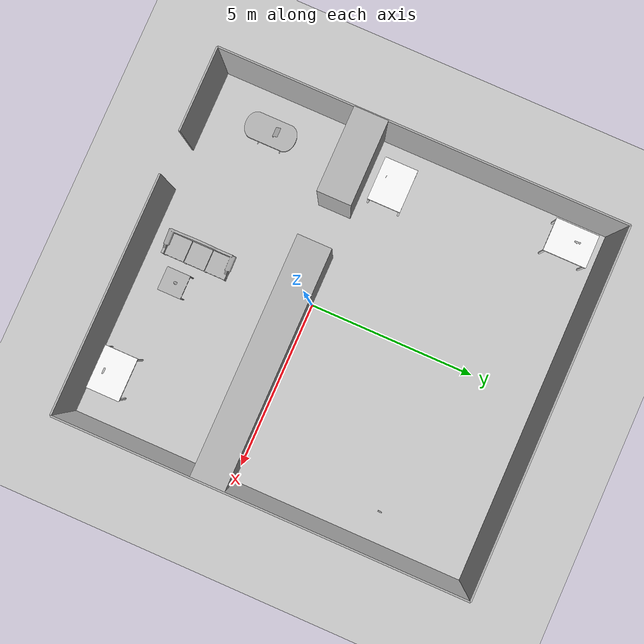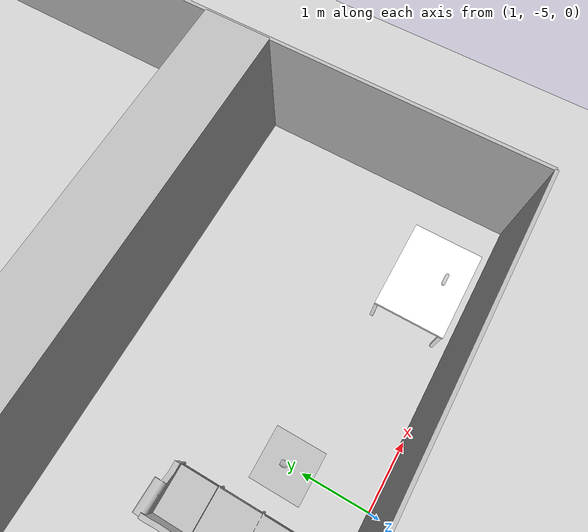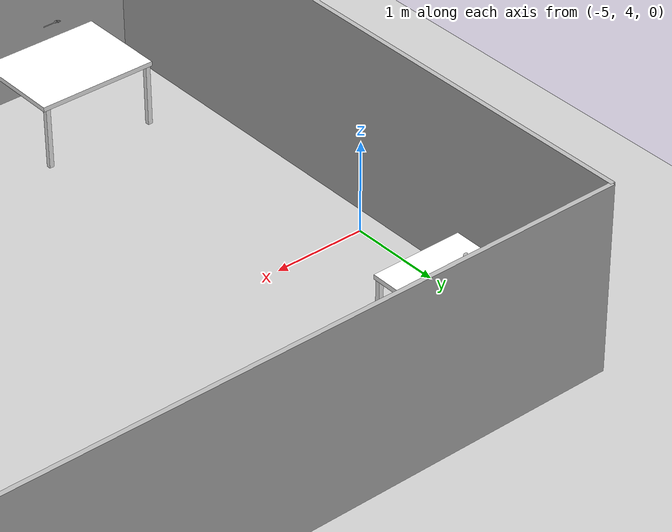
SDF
<sdf version="1.5">
 <world name="hri_hk_studio_world">
  <include><uri>model://sun</uri></include>
  <include><uri>model://ground_plane</uri></include>
  <include><uri>model://hri_hk_studio</uri><pose>2 -5 0 0 0 0</pose></include>
  <include><uri>model://hri_dinnertable</uri><pose>-4 -3 0 0 0 0</pose></include>
  <include><uri>model://hri_desk</uri><pose>-4 0.75 0 0 0 0</pose></include>
  <include><uri>model://hri_desk</uri><pose>-4.5 6 0 0 0 1.57</pose></include>
  <include><uri>model://hri_desk</uri><pose>4 -4.3 0 0 0 0</pose></include>
  <include><uri>model://hri_couch</uri><pose>0 -3.5 0 0 0 0</pose></include>
  <include><uri>model://hri_coffeetable</uri><pose>1 -3.8 0 0 0 0</pose></include>
  <include><uri>model://hri_obj_laptop</uri><pose>-4 -2.9 0.9 0 0 0</pose></include>
  <include><uri>model://hri_obj_mug</uri><pose>1 -3.8 0.5 0 0 0</pose></include>
  <include><uri>model://hri_obj_glassescase</uri><pose>4 -4.5 0.9 0 0 0</pose></include>
  <include><uri>model://hri_obj_fork</uri><pose>-4 0.5 0.9 0 0 0</pose></include>
  <include><uri>model://hri_obj_statue</uri><pose>-4.5 6 0.9 0 0 0</pose></include>
  <include><uri>model://hri_obj_monitor</uri><pose>4.5 4 0.6 0 0 0</pose></include>
 </world>
</sdf>

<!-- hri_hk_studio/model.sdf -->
<sdf version="1.4">
<model name="hri_hk_studio">
  <pose>0 0 0 0 0 0</pose>
  <static>true</static>

    <link name="wall1">
      <pose>0 0 1 0 0 0</pose>
      <inertial>
        <mass>1000.0</mass>
        <inertia> <!-- interias are tricky to compute -->
          <!-- http://answers.gazebosim.org/question/4372/the-inertia-matrix-explained/ -->
          <ixx>0.083</ixx>       <!-- for a box: ixx = 0.083 * mass * (y*y + z*z) -->
          <ixy>0.0</ixy>         <!-- for a box: ixy = 0 -->
          <ixz>0.0</ixz>         <!-- for a box: ixz = 0 -->
          <iyy>0.083</iyy>       <!-- for a box: iyy = 0.083 * mass * (x*x + z*z) -->
          <iyz>0.0</iyz>         <!-- for a box: iyz = 0 -->
          <izz>0.083</izz>       <!-- for a box: izz = 0.083 * mass * (x*x + y*y) -->
        </inertia>
      </inertial>
      <collision name="collision">
        <geometry>
          <box>
            <size>7.0    0.0500    2.0000</size>
          </box>
        </geometry>
      </collision>
      <visual name="visual">
        <geometry>
          <box>
            <size>7.0    0.0500    2.0000</size>
          </box>
        </geometry>
      </visual>
    </link>

    <link name="wall2">
      <pose>-6 0 1 0 0 0</pose>
      <inertial>
        <mass>1000.0</mass>
        <inertia> <!-- interias are tricky to compute -->
          <!-- http://answers.gazebosim.org/question/4372/the-inertia-matrix-explained/ -->
          <ixx>0.083</ixx>       <!-- for a box: ixx = 0.083 * mass * (y*y + z*z) -->
          <ixy>0.0</ixy>         <!-- for a box: ixy = 0 -->
          <ixz>0.0</ixz>         <!-- for a box: ixz = 0 -->
          <iyy>0.083</iyy>       <!-- for a box: iyy = 0.083 * mass * (x*x + z*z) -->
          <iyz>0.0</iyz>         <!-- for a box: iyz = 0 -->
          <izz>0.083</izz>       <!-- for a box: izz = 0.083 * mass * (x*x + y*y) -->
        </inertia>
      </inertial>
      <collision name="collision">
        <geometry>
          <box>
            <size>2.5    0.0500    2.0000</size>
          </box>
        </geometry>
      </collision>
      <visual name="visual">
        <geometry>
          <box>
            <size>2.5    0.0500    2.0000</size>
          </box>
        </geometry>
      </visual>
    </link>

    <link name="wall3">
      <pose>-7.25 6 1 0 0 0</pose>
      <inertial>
        <mass>1000.0</mass>
        <inertia> <!-- interias are tricky to compute -->
          <!-- http://answers.gazebosim.org/question/4372/the-inertia-matrix-explained/ -->
          <ixx>0.083</ixx>       <!-- for a box: ixx = 0.083 * mass * (y*y + z*z) -->
          <ixy>0.0</ixy>         <!-- for a box: ixy = 0 -->
          <ixz>0.0</ixz>         <!-- for a box: ixz = 0 -->
          <iyy>0.083</iyy>       <!-- for a box: iyy = 0.083 * mass * (x*x + z*z) -->
          <iyz>0.0</iyz>         <!-- for a box: iyz = 0 -->
          <izz>0.083</izz>       <!-- for a box: izz = 0.083 * mass * (x*x + y*y) -->
        </inertia>
      </inertial>
      <collision name="collision">
        <geometry>
          <box>
            <size>0.0500    12    2.0000</size>
          </box>
        </geometry>
      </collision>
      <visual name="visual">
        <geometry>
          <box>
            <size>0.0500    12    2.0000</size>
          </box>
        </geometry>
      </visual>
    </link>

    <link name="wall4">
      <pose>-6 4.5 1 0 0 0</pose>
      <inertial>
        <mass>1000.0</mass>
        <inertia> <!-- interias are tricky to compute -->
          <!-- http://answers.gazebosim.org/question/4372/the-inertia-matrix-explained/ -->
          <ixx>0.083</ixx>       <!-- for a box: ixx = 0.083 * mass * (y*y + z*z) -->
          <ixy>0.0</ixy>         <!-- for a box: ixy = 0 -->
          <ixz>0.0</ixz>         <!-- for a box: ixz = 0 -->
          <iyy>0.083</iyy>       <!-- for a box: iyy = 0.083 * mass * (x*x + z*z) -->
          <iyz>0.0</iyz>         <!-- for a box: iyz = 0 -->
          <izz>0.083</izz>       <!-- for a box: izz = 0.083 * mass * (x*x + y*y) -->
        </inertia>
      </inertial>
      <collision name="collision">
        <geometry>
          <box>
            <size>2.5    1    2.0000</size>
          </box>
        </geometry>
      </collision>
      <visual name="visual">
        <geometry>
          <box>
            <size>2.5    1    2.0000</size>
          </box>
        </geometry>
      </visual>
    </link>

    <link name="wall5">
      <pose>-1.875 12 1 0 0 0</pose>
      <inertial>
        <mass>1000.0</mass>
        <inertia> <!-- interias are tricky to compute -->
          <!-- http://answers.gazebosim.org/question/4372/the-inertia-matrix-explained/ -->
          <ixx>0.083</ixx>       <!-- for a box: ixx = 0.083 * mass * (y*y + z*z) -->
          <ixy>0.0</ixy>         <!-- for a box: ixy = 0 -->
          <ixz>0.0</ixz>         <!-- for a box: ixz = 0 -->
          <iyy>0.083</iyy>       <!-- for a box: iyy = 0.083 * mass * (x*x + z*z) -->
          <iyz>0.0</iyz>         <!-- for a box: iyz = 0 -->
          <izz>0.083</izz>       <!-- for a box: izz = 0.083 * mass * (x*x + y*y) -->
        </inertia>
      </inertial>
      <collision name="collision">
        <geometry>
          <box>
            <size>10.75    0.0500    2.0000</size>
          </box>
        </geometry>
      </collision>
      <visual name="visual">
        <geometry>
          <box>
            <size>10.75    0.0500    2.0000</size>
          </box>
        </geometry>
      </visual>
    </link>

    <link name="wall6">
      <pose>3.5 6 1 0 0 0</pose>
      <inertial>
        <mass>1000.0</mass>
        <inertia> <!-- interias are tricky to compute -->
          <!-- http://answers.gazebosim.org/question/4372/the-inertia-matrix-explained/ -->
          <ixx>0.083</ixx>       <!-- for a box: ixx = 0.083 * mass * (y*y + z*z) -->
          <ixy>0.0</ixy>         <!-- for a box: ixy = 0 -->
          <ixz>0.0</ixz>         <!-- for a box: ixz = 0 -->
          <iyy>0.083</iyy>       <!-- for a box: iyy = 0.083 * mass * (x*x + z*z) -->
          <iyz>0.0</iyz>         <!-- for a box: iyz = 0 -->
          <izz>0.083</izz>       <!-- for a box: izz = 0.083 * mass * (x*x + y*y) -->
        </inertia>
      </inertial>
      <collision name="collision">
        <geometry>
          <box>
            <size>0.0500    12    2.0000</size>
          </box>
        </geometry>
      </collision>
      <visual name="visual">
        <geometry>
          <box>
            <size>0.0500    12    2.0000</size>
          </box>
        </geometry>
      </visual>
    </link>

    <link name="wall7">
      <pose>0 4.5 1 0 0 0</pose>
      <inertial>
        <mass>1000.0</mass>
        <inertia> <!-- interias are tricky to compute -->
          <!-- http://answers.gazebosim.org/question/4372/the-inertia-matrix-explained/ -->
          <ixx>0.083</ixx>       <!-- for a box: ixx = 0.083 * mass * (y*y + z*z) -->
          <ixy>0.0</ixy>         <!-- for a box: ixy = 0 -->
          <ixz>0.0</ixz>         <!-- for a box: ixz = 0 -->
          <iyy>0.083</iyy>       <!-- for a box: iyy = 0.083 * mass * (x*x + z*z) -->
          <iyz>0.0</iyz>         <!-- for a box: iyz = 0 -->
          <izz>0.083</izz>       <!-- for a box: izz = 0.083 * mass * (x*x + y*y) -->
        </inertia>
      </inertial>
      <collision name="collision">
        <geometry>
          <box>
            <size>7    1    2.0000</size>
          </box>
        </geometry>
      </collision>
      <visual name="visual">
        <geometry>
          <box>
            <size>7    1    2.0000</size>
          </box>
        </geometry>
      </visual>
    </link>

  </model>
</sdf>

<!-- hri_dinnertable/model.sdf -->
<sdf version="1.4">
<model name="dinner table">
  <pose>0 0 0 0 0 0</pose>
  <static>true</static>
    <link name="link">
      <pose>0 0 0 0 0 0</pose>
      <inertial>
        <mass>1.0</mass>
        <inertia> <!-- interias are tricky to compute -->
          <!-- http://answers.gazebosim.org/question/4372/the-inertia-matrix-explained/ -->
          <ixx>0.083</ixx>       <!-- for a box: ixx = 0.083 * mass * (y*y + z*z) -->
          <ixy>0.0</ixy>         <!-- for a box: ixy = 0 -->
          <ixz>0.0</ixz>         <!-- for a box: ixz = 0 -->
          <iyy>0.083</iyy>       <!-- for a box: iyy = 0.083 * mass * (x*x + z*z) -->
          <iyz>0.0</iyz>         <!-- for a box: iyz = 0 -->
          <izz>0.083</izz>       <!-- for a box: izz = 0.083 * mass * (x*x + y*y) -->
        </inertia>
      </inertial>
      <collision name="collision">
	<pose>0 0 0 1.5708 0 0</pose>
        <geometry>
	  <mesh>
	    <uri>model://hri_dinnertable/meshes/dinnertable.dae</uri>
	    <scale>1 1 1</scale>
	  </mesh>
        </geometry>
      </collision>
      <visual name="visual">
	<pose>0 0 0 1.5708 0 0</pose>
        <geometry>
	  <mesh>
	    <uri>model://hri_dinnertable/meshes/dinnertable.dae</uri>
	    <scale>1 1 1</scale>
	  </mesh>
        </geometry>
      </visual>
    </link>
  </model>
</sdf>

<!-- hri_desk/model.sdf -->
<sdf version="1.4">
<model name="hri_desk">
  <pose>0 0 0 0 0 0</pose>
  <static>true</static>

    <link name="wall1">
      <pose>0 0 0.685 0 0 0</pose>
      <inertial>
        <mass>1000.0</mass>
        <inertia> <!-- interias are tricky to compute -->
          <!-- http://answers.gazebosim.org/question/4372/the-inertia-matrix-explained/ -->
          <ixx>0.083</ixx>       <!-- for a box: ixx = 0.083 * mass * (y*y + z*z) -->
          <ixy>0.0</ixy>         <!-- for a box: ixy = 0 -->
          <ixz>0.0</ixz>         <!-- for a box: ixz = 0 -->
          <iyy>0.083</iyy>       <!-- for a box: iyy = 0.083 * mass * (x*x + z*z) -->
          <iyz>0.0</iyz>         <!-- for a box: iyz = 0 -->
          <izz>0.083</izz>       <!-- for a box: izz = 0.083 * mass * (x*x + y*y) -->
        </inertia>
      </inertial>
      <collision name="collision">
        <geometry>
          <box>
            <size>1.3    1.0    0.05</size>
          </box>
        </geometry>
      </collision>
      <visual name="visual">
        <geometry>
          <box>
            <size>1.3    1.0    0.05</size>
          </box>
        </geometry>
	<material>
          <ambient>0.5 0.5 0.3 1</ambient>
          <diffuse>1 1 1 1</diffuse>
          <specular>0.1 0.1 0.1 1</specular>
          <emissive>0 0 0 0</emissive>
        </material>
      </visual>
    </link>

    <link name="wall2">
      <pose>0.6    0.475    0.33 0 0 0</pose>
      <inertial>
        <mass>1000.0</mass>
        <inertia> <!-- interias are tricky to compute -->
          <!-- http://answers.gazebosim.org/question/4372/the-inertia-matrix-explained/ -->
          <ixx>0.083</ixx>       <!-- for a box: ixx = 0.083 * mass * (y*y + z*z) -->
          <ixy>0.0</ixy>         <!-- for a box: ixy = 0 -->
          <ixz>0.0</ixz>         <!-- for a box: ixz = 0 -->
          <iyy>0.083</iyy>       <!-- for a box: iyy = 0.083 * mass * (x*x + z*z) -->
          <iyz>0.0</iyz>         <!-- for a box: iyz = 0 -->
          <izz>0.083</izz>       <!-- for a box: izz = 0.083 * mass * (x*x + y*y) -->
        </inertia>
      </inertial>
      <collision name="collision">
        <geometry>
          <box>
            <size>0.0500    0.0500    0.66</size>
          </box>
        </geometry>
      </collision>
      <visual name="visual">
        <geometry>
          <box>
            <size>0.0500    0.0500    0.66</size>
          </box>
        </geometry>
	<material>
          <ambient>1 1 0.5 1</ambient>
          <diffuse>1 1 1 1</diffuse>
          <specular>0.1 0.1 0.1 1</specular>
          <emissive>0 0 0 0</emissive>
        </material>
      </visual>
    </link>

    <link name="wall3">
      <pose>0.6    -0.475    0.33 0 0 0</pose>
      <inertial>
        <mass>1000.0</mass>
        <inertia> <!-- interias are tricky to compute -->
          <!-- http://answers.gazebosim.org/question/4372/the-inertia-matrix-explained/ -->
          <ixx>0.083</ixx>       <!-- for a box: ixx = 0.083 * mass * (y*y + z*z) -->
          <ixy>0.0</ixy>         <!-- for a box: ixy = 0 -->
          <ixz>0.0</ixz>         <!-- for a box: ixz = 0 -->
          <iyy>0.083</iyy>       <!-- for a box: iyy = 0.083 * mass * (x*x + z*z) -->
          <iyz>0.0</iyz>         <!-- for a box: iyz = 0 -->
          <izz>0.083</izz>       <!-- for a box: izz = 0.083 * mass * (x*x + y*y) -->
        </inertia>
      </inertial>
      <collision name="collision">
        <geometry>
          <box>
            <size>0.0500    0.0500    0.66</size>
          </box>
        </geometry>
      </collision>
      <visual name="visual">
        <geometry>
          <box>
            <size>0.0500    0.0500    0.66</size>
          </box>
        </geometry>
	<material>
          <ambient>1 1 0.5 1</ambient>
          <diffuse>1 1 1 1</diffuse>
          <specular>0.1 0.1 0.1 1</specular>
          <emissive>0 0 0 0</emissive>
        </material>
      </visual>
    </link>

    <link name="wall4">
      <pose>-0.6    -0.475    0.33 0 0 0</pose>
      <inertial>
        <mass>1000.0</mass>
        <inertia> <!-- interias are tricky to compute -->
          <!-- http://answers.gazebosim.org/question/4372/the-inertia-matrix-explained/ -->
          <ixx>0.083</ixx>       <!-- for a box: ixx = 0.083 * mass * (y*y + z*z) -->
          <ixy>0.0</ixy>         <!-- for a box: ixy = 0 -->
          <ixz>0.0</ixz>         <!-- for a box: ixz = 0 -->
          <iyy>0.083</iyy>       <!-- for a box: iyy = 0.083 * mass * (x*x + z*z) -->
          <iyz>0.0</iyz>         <!-- for a box: iyz = 0 -->
          <izz>0.083</izz>       <!-- for a box: izz = 0.083 * mass * (x*x + y*y) -->
        </inertia>
      </inertial>
      <collision name="collision">
        <geometry>
          <box>
            <size>0.0500    0.0500    0.66</size>
          </box>
        </geometry>
      </collision>
      <visual name="visual">
        <geometry>
          <box>
            <size>0.0500    0.0500    0.66</size>
          </box>
        </geometry>
	<material>
          <ambient>1 1 0.5 1</ambient>
          <diffuse>1 1 1 1</diffuse>
          <specular>0.1 0.1 0.1 1</specular>
          <emissive>0 0 0 0</emissive>
        </material>
      </visual>
    </link>

    <link name="wall5">
      <pose>-0.6    0.475    0.33 0 0 0</pose>
      <inertial>
        <mass>1000.0</mass>
        <inertia> <!-- interias are tricky to compute -->
          <!-- http://answers.gazebosim.org/question/4372/the-inertia-matrix-explained/ -->
          <ixx>0.083</ixx>       <!-- for a box: ixx = 0.083 * mass * (y*y + z*z) -->
          <ixy>0.0</ixy>         <!-- for a box: ixy = 0 -->
          <ixz>0.0</ixz>         <!-- for a box: ixz = 0 -->
          <iyy>0.083</iyy>       <!-- for a box: iyy = 0.083 * mass * (x*x + z*z) -->
          <iyz>0.0</iyz>         <!-- for a box: iyz = 0 -->
          <izz>0.083</izz>       <!-- for a box: izz = 0.083 * mass * (x*x + y*y) -->
        </inertia>
      </inertial>
      <collision name="collision">
        <geometry>
          <box>
            <size>0.0500    0.0500    0.66</size>
          </box>
        </geometry>
      </collision>
      <visual name="visual">
        <geometry>
          <box>
            <size>0.0500    0.0500    0.66</size>
          </box>
        </geometry>
	<material>
          <ambient>1 1 0.5 1</ambient>
          <diffuse>1 1 1 1</diffuse>
          <specular>0.1 0.1 0.1 1</specular>
          <emissive>0 0 0 0</emissive>
        </material>
      </visual>
    </link>

  </model>
</sdf>

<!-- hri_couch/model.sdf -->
<sdf version="1.4">
<model name="couch">
  <pose>0 0 0 0 0 0</pose>
  <static>true</static>
    <link name="link">
      <pose>0 0 0 0 0 0</pose>
      <inertial>
        <mass>1.0</mass>
        <inertia> <!-- interias are tricky to compute -->
          <!-- http://answers.gazebosim.org/question/4372/the-inertia-matrix-explained/ -->
          <ixx>0.083</ixx>       <!-- for a box: ixx = 0.083 * mass * (y*y + z*z) -->
          <ixy>0.0</ixy>         <!-- for a box: ixy = 0 -->
          <ixz>0.0</ixz>         <!-- for a box: ixz = 0 -->
          <iyy>0.083</iyy>       <!-- for a box: iyy = 0.083 * mass * (x*x + z*z) -->
          <iyz>0.0</iyz>         <!-- for a box: iyz = 0 -->
          <izz>0.083</izz>       <!-- for a box: izz = 0.083 * mass * (x*x + y*y) -->
        </inertia>
      </inertial>
      <collision name="collision">
	<pose>0 0 0 1.5708 0 0</pose>
        <geometry>
	  <mesh>
	    <uri>model://hri_couch/meshes/couch.dae</uri>
	    <scale>1 1 1</scale>
	  </mesh>
        </geometry>
      </collision>
      <visual name="visual">
	<pose>0 0 0 1.5708 0 0</pose>
        <geometry>
	  <mesh>
	    <uri>model://hri_couch/meshes/couch.dae</uri>
	    <scale>1 1 1</scale>
	  </mesh>
        </geometry>
      </visual>
    </link>
  </model>
</sdf>

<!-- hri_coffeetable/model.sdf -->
<sdf version="1.4">
<model name="coffee table">
  <pose>0 0 0 0 0 0</pose>
  <static>true</static>
    <link name="link">
      <pose>0 0 0 0 0 0</pose>
      <inertial>
        <mass>1.0</mass>
        <inertia> <!-- interias are tricky to compute -->
          <!-- http://answers.gazebosim.org/question/4372/the-inertia-matrix-explained/ -->
          <ixx>0.083</ixx>       <!-- for a box: ixx = 0.083 * mass * (y*y + z*z) -->
          <ixy>0.0</ixy>         <!-- for a box: ixy = 0 -->
          <ixz>0.0</ixz>         <!-- for a box: ixz = 0 -->
          <iyy>0.083</iyy>       <!-- for a box: iyy = 0.083 * mass * (x*x + z*z) -->
          <iyz>0.0</iyz>         <!-- for a box: iyz = 0 -->
          <izz>0.083</izz>       <!-- for a box: izz = 0.083 * mass * (x*x + y*y) -->
        </inertia>
      </inertial>
      <collision name="collision">
	<pose>0 0 0 1.5708 0 0</pose>
        <geometry>
	  <mesh>
	    <uri>model://hri_coffeetable/meshes/coffeetable.dae</uri>
	    <scale>1 1 1</scale>
	  </mesh>
        </geometry>
      </collision>
      <visual name="visual">
	<pose>0 0 0 1.5708 0 0</pose>
        <geometry>
	  <mesh>
	    <uri>model://hri_coffeetable/meshes/coffeetable.dae</uri>
	    <scale>1 1 1</scale>
	  </mesh>
        </geometry>
      </visual>
    </link>
  </model>
</sdf>

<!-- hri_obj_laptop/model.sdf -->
<sdf version="1.5">
  <model name="hri_obj_laptop">
    <link name="link">
      <pose>0 0 0 0 0 0</pose>
      <inertial>
        <mass>0.0599</mass>
        <inertia>
          <ixx>0.0003028961527030333</ixx>
          <ixy>0</ixy>
          <ixz>0</ixz>
          <iyy>0.0003028961527030333</iyy>
          <iyz>0</iyz>
          <izz>3.2876352372798436e-05</izz>
        </inertia>
      </inertial>

      <collision name="collision">
        <geometry>
          <mesh>
            <uri>model://hri_obj_laptop/meshes/laptop.dae</uri>
          </mesh>
        </geometry>
        <surface>
          <contact>
            <!-- typical acrylic plastic material properties -->
            <poissons_ratio>0.35</poissons_ratio>
            <elastic_modulus>3.102640776e+09</elastic_modulus>
            <ode>
              <kp>100000</kp>
              <kd>100</kd>
              <max_vel>100.0</max_vel>
              <min_depth>0.001</min_depth>
            </ode>
          </contact>
          <friction>
            <torsional>
              <coefficient>1.0</coefficient>
              <use_patch_radius>0</use_patch_radius>
              <surface_radius>0.01</surface_radius>
            </torsional>
          </friction>
        </surface>
      </collision>

      <visual name="visual">
        <geometry>
          <mesh>
            <uri>model://hri_obj_laptop/meshes/laptop.dae</uri>
          </mesh>
        </geometry>
        <material>
          <script>
            <uri>file://media/materials/scripts/gazebo.material</uri>
            <name>Gazebo/GreyTransparent</name>
          </script>
        </material>
      </visual>

    </link>
  </model>
</sdf>

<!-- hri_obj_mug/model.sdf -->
<sdf version="1.5">
  <model name="hri_obj_mug">
    <link name="link">
      <pose>0 0 0.065 0 0 0</pose>
      <inertial>
        <mass>0.0599</mass>
        <inertia>
          <ixx>0.0003028961527030333</ixx>
          <ixy>0</ixy>
          <ixz>0</ixz>
          <iyy>0.0003028961527030333</iyy>
          <iyz>0</iyz>
          <izz>3.2876352372798436e-05</izz>
        </inertia>
      </inertial>

      <collision name="collision">
        <geometry>
          <mesh>
            <uri>model://hri_obj_mug/meshes/mug.dae</uri>
          </mesh>
        </geometry>
        <surface>
          <contact>
            <!-- typical acrylic plastic material properties -->
            <poissons_ratio>0.35</poissons_ratio>
            <elastic_modulus>3.102640776e+09</elastic_modulus>
            <ode>
              <kp>100000</kp>
              <kd>100</kd>
              <max_vel>100.0</max_vel>
              <min_depth>0.001</min_depth>
            </ode>
          </contact>
          <friction>
            <torsional>
              <coefficient>1.0</coefficient>
              <use_patch_radius>0</use_patch_radius>
              <surface_radius>0.01</surface_radius>
            </torsional>
          </friction>
        </surface>
      </collision>

      <visual name="visual">
        <geometry>
          <mesh>
            <uri>model://hri_obj_mug/meshes/mug.dae</uri>
          </mesh>
        </geometry>
        <material>
          <script>
            <uri>file://media/materials/scripts/gazebo.material</uri>
            <name>Gazebo/GreyTransparent</name>
          </script>
        </material>
      </visual>

    </link>
  </model>
</sdf>

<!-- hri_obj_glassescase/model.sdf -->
<sdf version="1.5">
  <model name="hri_obj_glassescase">
    <link name="link">
      <pose>0 0 0.065 0 0 0</pose>
      <inertial>
        <mass>0.0599</mass>
        <inertia>
          <ixx>0.0003028961527030333</ixx>
          <ixy>0</ixy>
          <ixz>0</ixz>
          <iyy>0.0003028961527030333</iyy>
          <iyz>0</iyz>
          <izz>3.2876352372798436e-05</izz>
        </inertia>
      </inertial>

      <collision name="collision">
        <geometry>
          <mesh>
            <uri>model://hri_obj_glassescase/meshes/glassescase.dae</uri>
          </mesh>
        </geometry>
        <surface>
          <contact>
            <!-- typical acrylic plastic material properties -->
            <poissons_ratio>0.35</poissons_ratio>
            <elastic_modulus>3.102640776e+09</elastic_modulus>
            <ode>
              <kp>100000</kp>
              <kd>100</kd>
              <max_vel>100.0</max_vel>
              <min_depth>0.001</min_depth>
            </ode>
          </contact>
          <friction>
            <torsional>
              <coefficient>1.0</coefficient>
              <use_patch_radius>0</use_patch_radius>
              <surface_radius>0.01</surface_radius>
            </torsional>
          </friction>
        </surface>
      </collision>

      <visual name="visual">
        <geometry>
          <mesh>
            <uri>model://hri_obj_glassescase/meshes/glassescase.dae</uri>
          </mesh>
        </geometry>
        <material>
          <script>
            <uri>file://media/materials/scripts/gazebo.material</uri>
            <name>Gazebo/GreyTransparent</name>
          </script>
        </material>
      </visual>

    </link>
  </model>
</sdf>

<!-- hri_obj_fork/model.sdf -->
<sdf version="1.5">
  <model name="hri_obj_fork">
    <link name="link">
      <pose>0 0 0.15 0 0 0</pose>
      <inertial>
        <mass>0.0599</mass>
        <inertia>
          <ixx>0.0003028961527030333</ixx>
          <ixy>0</ixy>
          <ixz>0</ixz>
          <iyy>0.0003028961527030333</iyy>
          <iyz>0</iyz>
          <izz>3.2876352372798436e-05</izz>
        </inertia>
      </inertial>

      <collision name="collision">
        <geometry>
          <mesh>
            <uri>model://hri_obj_fork/meshes/fork.dae</uri>
          </mesh>
        </geometry>
        <surface>
          <contact>
            <!-- typical acrylic plastic material properties -->
            <poissons_ratio>0.35</poissons_ratio>
            <elastic_modulus>3.102640776e+09</elastic_modulus>
            <ode>
              <kp>100000</kp>
              <kd>100</kd>
              <max_vel>100.0</max_vel>
              <min_depth>0.001</min_depth>
            </ode>
          </contact>
          <friction>
            <torsional>
              <coefficient>1.0</coefficient>
              <use_patch_radius>0</use_patch_radius>
              <surface_radius>0.01</surface_radius>
            </torsional>
          </friction>
        </surface>
      </collision>

      <visual name="visual">
        <geometry>
          <mesh>
            <uri>model://hri_obj_fork/meshes/fork.dae</uri>
          </mesh>
        </geometry>
        <material>
          <script>
            <uri>file://media/materials/scripts/gazebo.material</uri>
            <name>Gazebo/GreyTransparent</name>
          </script>
        </material>
      </visual>

    </link>
  </model>
</sdf>

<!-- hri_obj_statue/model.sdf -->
<sdf version="1.5">
  <model name="hri_obj_statue">
    <link name="link">
      <pose>0 0 0.15 0 0 0</pose>
      <inertial>
        <mass>0.0599</mass>
        <inertia>
          <ixx>0.0003028961527030333</ixx>
          <ixy>0</ixy>
          <ixz>0</ixz>
          <iyy>0.0003028961527030333</iyy>
          <iyz>0</iyz>
          <izz>3.2876352372798436e-05</izz>
        </inertia>
      </inertial>

      <collision name="collision">
        <geometry>
          <mesh>
            <uri>model://hri_obj_statue/meshes/statue.dae</uri>
          </mesh>
        </geometry>
        <surface>
          <contact>
            <!-- typical acrylic plastic material properties -->
            <poissons_ratio>0.35</poissons_ratio>
            <elastic_modulus>3.102640776e+09</elastic_modulus>
            <ode>
              <kp>100000</kp>
              <kd>100</kd>
              <max_vel>100.0</max_vel>
              <min_depth>0.001</min_depth>
            </ode>
          </contact>
          <friction>
            <torsional>
              <coefficient>1.0</coefficient>
              <use_patch_radius>0</use_patch_radius>
              <surface_radius>0.01</surface_radius>
            </torsional>
          </friction>
        </surface>
      </collision>

      <visual name="visual">
        <geometry>
          <mesh>
            <uri>model://hri_obj_statue/meshes/statue.dae</uri>
          </mesh>
        </geometry>
        <material>
          <script>
            <uri>file://media/materials/scripts/gazebo.material</uri>
            <name>Gazebo/GreyTransparent</name>
          </script>
        </material>
      </visual>

    </link>
  </model>
</sdf>

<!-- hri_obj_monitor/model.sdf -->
<sdf version="1.5">
  <model name="hri_obj_monitor">
    <link name="link">
      <pose>0 0 0.15 0 0 0</pose>
      <inertial>
        <mass>0.0599</mass>
        <inertia>
          <ixx>0.0003028961527030333</ixx>
          <ixy>0</ixy>
          <ixz>0</ixz>
          <iyy>0.0003028961527030333</iyy>
          <iyz>0</iyz>
          <izz>3.2876352372798436e-05</izz>
        </inertia>
      </inertial>

      <collision name="collision">
        <geometry>
          <mesh>
            <uri>model://hri_obj_monitor/meshes/monitor.dae</uri>
          </mesh>
        </geometry>
        <surface>
          <contact>
            <!-- typical acrylic plastic material properties -->
            <poissons_ratio>0.35</poissons_ratio>
            <elastic_modulus>3.102640776e+09</elastic_modulus>
            <ode>
              <kp>100000</kp>
              <kd>100</kd>
              <max_vel>100.0</max_vel>
              <min_depth>0.001</min_depth>
            </ode>
          </contact>
          <friction>
            <torsional>
              <coefficient>1.0</coefficient>
              <use_patch_radius>0</use_patch_radius>
              <surface_radius>0.01</surface_radius>
            </torsional>
          </friction>
        </surface>
      </collision>

      <visual name="visual">
        <geometry>
          <mesh>
            <uri>model://hri_obj_monitor/meshes/monitor.dae</uri>
          </mesh>
        </geometry>
        <material>
          <script>
            <uri>file://media/materials/scripts/gazebo.material</uri>
            <name>Gazebo/GreyTransparent</name>
          </script>
        </material>
      </visual>

    </link>
  </model>
</sdf>
